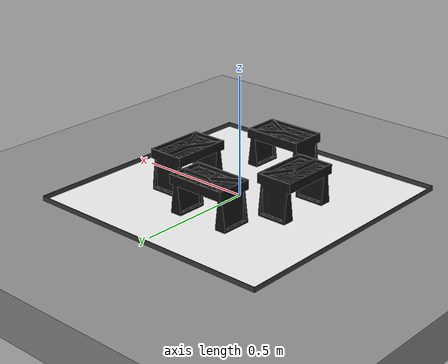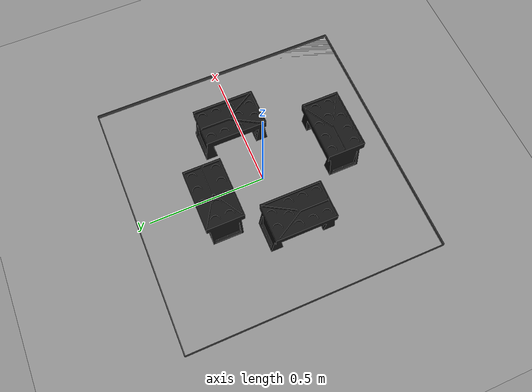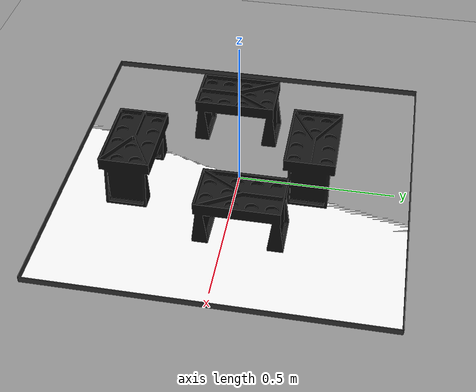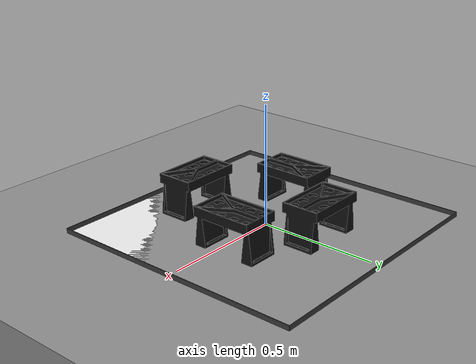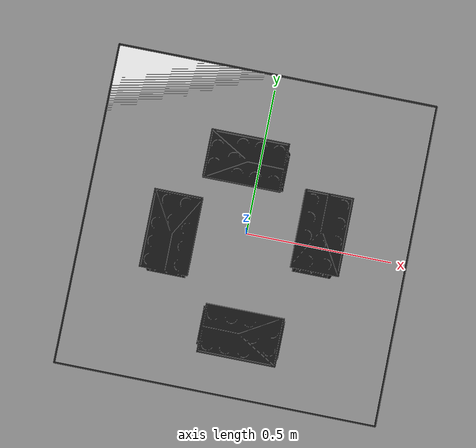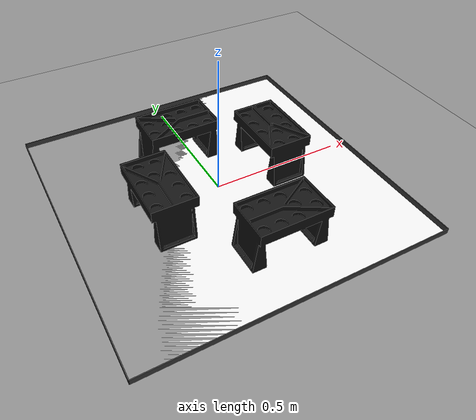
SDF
<?xml version="1.0"?>
<sdf version="1.9">
  <world name="brazo_workspace">

    <!-- ==================== Physics ==================== -->
    <physics type="ode">
      <max_step_size>0.004</max_step_size>
      <real_time_factor>1.0</real_time_factor>
      <real_time_update_rate>250</real_time_update_rate>
    </physics>

    <!-- ==================== Plugins ==================== -->
    <plugin name="gz::sim::systems::Physics"          filename="gz-sim-physics-system"/>
    <plugin name="gz::sim::systems::UserCommands"     filename="gz-sim-user-commands-system"/>
    <plugin name="gz::sim::systems::SceneBroadcaster" filename="gz-sim-scene-broadcaster-system"/>
    <plugin filename="gz-sim-sensors-system"          name="gz::sim::systems::Sensors">
      <render_engine>ogre2</render_engine>
    </plugin>

    <!-- ==================== Lighting ==================== -->
    <light type="directional" name="sun">
      <cast_shadows>true</cast_shadows>
      <pose>0 0 10 0 0 0</pose>
      <diffuse>0.85 0.85 0.85 1</diffuse>
      <specular>0.25 0.25 0.25 1</specular>
      <direction>-0.5 0.1 -0.9</direction>
    </light>
    <light type="point" name="overhead">
      <pose>0 0 2.5 0 0 0</pose>
      <diffuse>0.55 0.55 0.55 1</diffuse>
      <specular>0.05 0.05 0.05 1</specular>
      <attenuation>
        <range>6</range>
        <linear>0.05</linear>
        <constant>0.1</constant>
        <quadratic>0.0</quadratic>
      </attenuation>
    </light>

    <!-- ==================== Ground (visual only) ==================== -->
    <model name="ground_plane">
      <static>true</static>
      <pose>0 0 -0.1 0 0 0</pose>
      <link name="link">
        <visual name="visual">
          <geometry><box><size>20 20 0.2</size></box></geometry>
          <material>
            <ambient>0.55 0.55 0.55 1</ambient>
            <diffuse>0.55 0.55 0.55 1</diffuse>
          </material>
        </visual>
      </link>
    </model>

    <!-- ==================== Work surface 1.1 × 1.1 m (visual only) ==================== -->
    <model name="work_surface">
      <static>true</static>
      <pose>0 0 -0.005 0 0 0</pose>
      <link name="link">
        <visual name="visual">
          <geometry><box><size>1.1 1.1 0.01</size></box></geometry>
          <material>
            <ambient>0.93 0.93 0.93 1</ambient>
            <diffuse>0.93 0.93 0.93 1</diffuse>
            <specular>0.05 0.05 0.05 1</specular>
          </material>
        </visual>
      </link>
    </model>

    <!-- Border frame — four thin strips, 20 mm tall, 3 mm wide (visual only) -->
    <model name="border_north">
      <static>true</static>
      <pose>0 0.5515 0.01 0 0 0</pose>
      <link name="link">
        <visual name="visual">
          <geometry><box><size>1.103 0.003 0.02</size></box></geometry>
          <material><ambient>0.25 0.25 0.25 1</ambient><diffuse>0.25 0.25 0.25 1</diffuse></material>
        </visual>
      </link>
    </model>
    <model name="border_south">
      <static>true</static>
      <pose>0 -0.5515 0.01 0 0 0</pose>
      <link name="link">
        <visual name="visual">
          <geometry><box><size>1.103 0.003 0.02</size></box></geometry>
          <material><ambient>0.25 0.25 0.25 1</ambient><diffuse>0.25 0.25 0.25 1</diffuse></material>
        </visual>
      </link>
    </model>
    <model name="border_east">
      <static>true</static>
      <pose>0.5515 0 0.01 0 0 0</pose>
      <link name="link">
        <visual name="visual">
          <geometry><box><size>0.003 1.103 0.02</size></box></geometry>
          <material><ambient>0.25 0.25 0.25 1</ambient><diffuse>0.25 0.25 0.25 1</diffuse></material>
        </visual>
      </link>
    </model>
    <model name="border_west">
      <static>true</static>
      <pose>-0.5515 0 0.01 0 0 0</pose>
      <link name="link">
        <visual name="visual">
          <geometry><box><size>0.003 1.103 0.02</size></box></geometry>
          <material><ambient>0.25 0.25 0.25 1</ambient><diffuse>0.25 0.25 0.25 1</diffuse></material>
        </visual>
      </link>
    </model>

    <!-- Recipient NORTH  +Y = 230 mm -->
    <model name="recipient_north">
      <static>true</static>
      <pose>-0.0465 0.230 0   0 0 1.5708</pose>
      <link name="link">
        <visual name="visual">
          <pose>-0.09172 -0.00312 1.155   3.1416 0 0</pose>
          <geometry>
            <mesh>
              <uri>file:///home/arlo/Ros_projects/Ros2/Baseepin.STL</uri>
              <scale>0.001 0.001 0.001</scale>
            </mesh>
          </geometry>
          <material>
            <ambient>0.05 0.05 0.05 1</ambient>
            <diffuse>0.08 0.08 0.08 1</diffuse>
            <specular>0.15 0.15 0.15 1</specular>
          </material>
        </visual>
      </link>
    </model>

    <!-- Recipient EAST  +X = 241 mm  (yaw 180°) -->
    <model name="recipient_east">
      <static>true</static>
      <pose>0.2411 0.0465 0   0 0 3.1416</pose>
      <link name="link">
        <visual name="visual">
          <pose>-0.09172 -0.00312 1.155   3.1416 0 0</pose>
          <geometry>
            <mesh>
              <uri>file:///home/arlo/Ros_projects/Ros2/Baseepin.STL</uri>
              <scale>0.001 0.001 0.001</scale>
            </mesh>
          </geometry>
          <material>
            <ambient>0.05 0.05 0.05 1</ambient>
            <diffuse>0.08 0.08 0.08 1</diffuse>
            <specular>0.15 0.15 0.15 1</specular>
          </material>
        </visual>
      </link>
    </model>

    <!-- Recipient SOUTH  -Y = 330 mm  (yaw -90°) -->
    <model name="recipient_south">
      <static>true</static>
      <pose>0.0465 -0.330 0   0 0 -1.5708</pose>
      <link name="link">
        <visual name="visual">
          <pose>-0.09172 -0.00312 1.155   3.1416 0 0</pose>
          <geometry>
            <mesh>
              <uri>file:///home/arlo/Ros_projects/Ros2/Baseepin.STL</uri>
              <scale>0.001 0.001 0.001</scale>
            </mesh>
          </geometry>
          <material>
            <ambient>0.05 0.05 0.05 1</ambient>
            <diffuse>0.08 0.08 0.08 1</diffuse>
            <specular>0.15 0.15 0.15 1</specular>
          </material>
        </visual>
      </link>
    </model>

    <!-- Recipient WEST  -X = 240 mm  (yaw 0°) -->
    <model name="recipient_west">
      <static>true</static>
      <pose>-0.240 -0.0465 0   0 0 0</pose>
      <link name="link">
        <visual name="visual">
          <pose>-0.09172 -0.00312 1.155   3.1416 0 0</pose>
          <geometry>
            <mesh>
              <uri>file:///home/arlo/Ros_projects/Ros2/Baseepin.STL</uri>
              <scale>0.001 0.001 0.001</scale>
            </mesh>
          </geometry>
          <material>
            <ambient>0.05 0.05 0.05 1</ambient>
            <diffuse>0.08 0.08 0.08 1</diffuse>
            <specular>0.15 0.15 0.15 1</specular>
          </material>
        </visual>
      </link>
    </model>

  </world>
</sdf>
